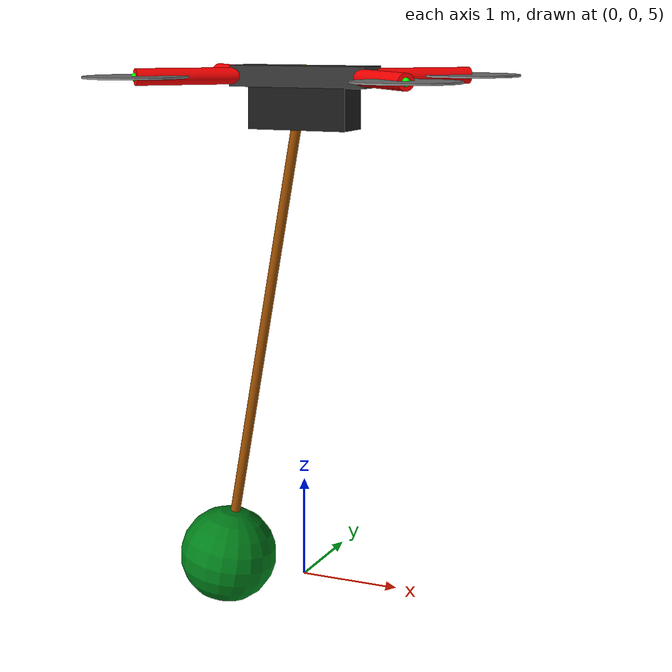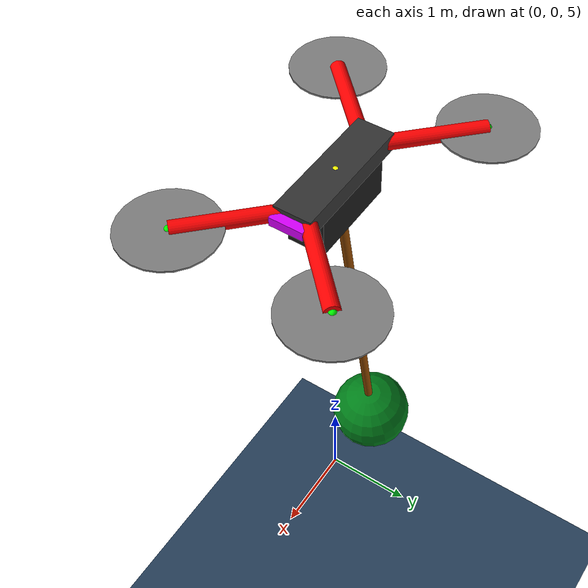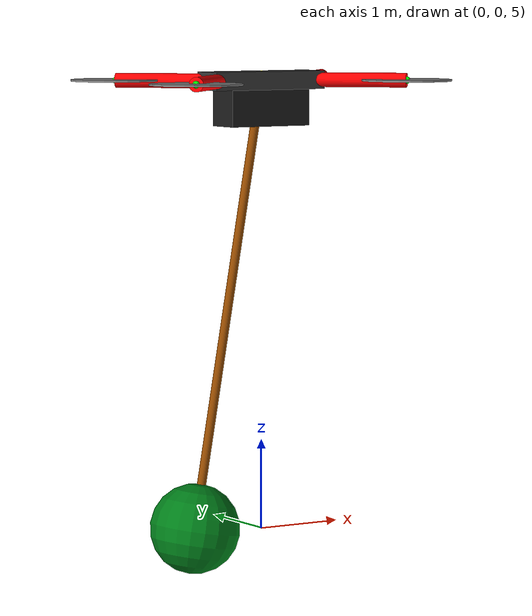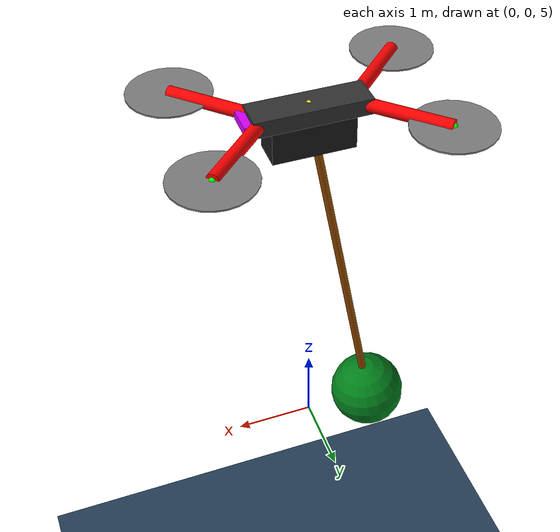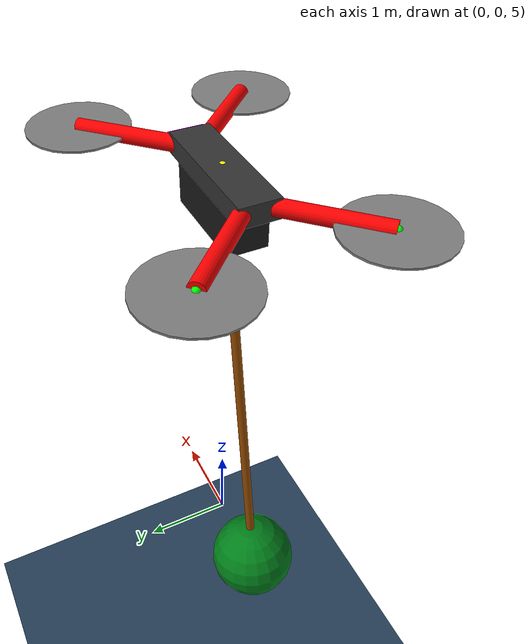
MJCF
<mujoco model="Model quadcopter_v1.4.1"> <!--v1.4.1=pridani zaveseneho zavazi, ruzne timestep-->

	<statistic center="0 0 0.1" extent="0.6" meansize="0.5"/>
	<option timestep ="0.05" density="1.205" viscosity="1.8e-5"/> <!--density[kg/m3] viscosity[kg/(ms)]-->

	<visual>
		<headlight diffuse="0.6 0.6 0.6" ambient="0.5 0.5 0.5" specular="1 1 1"/>
		<rgba haze="0.1 0.2 0.3 1"/>
		<global azimuth="110" elevation="-40" ellipsoidinertia="true"/>
		<map zfar="1000"/>
  	</visual>

	<asset>
		<!--scena-->
		<texture type="skybox" builtin="gradient" rgb1="0.3 0.5 0.7" rgb2="0 0 0" width="512" height="512"/><!--něbo-->

		<texture type="2d" name="podlaha_textura" builtin="checker" mark="edge" rgb1="0.2 0.3 0.4" rgb2="0.1 0.2 0.3" markrgb="0.8 0.8 0.8" width="255" height="255"/>
		<material name="podlaha" texture="podlaha_textura" texuniform="true" texrepeat="3 3" reflectance="0"/><!--podlaha-->

	</asset>

	<worldbody><!--SI units-->
		<!--svetlo a podlaha-->
        <light diffuse="0.7 0.7 0.7" pos="0 0 30" dir="0 0 -1" directional="false"/>
		<geom name="podlaha" type="plane" size="0 0 0.1" material="podlaha"/>

		<!--kvadrokoptera-->
		<body name="kvadrokoptera" pos="0 0 10">
			<joint type="free"/>
			<geom type="box" name="zakladna" size="0.7 0.2 0.1" mass="1" rgba="0.2 0.2 0.2 1"/>
			<geom type="box" name="podvozek" size="0.5 0.2 0.2" mass="0.5" pos="0 0 -0.3" rgba="0.1 0.1 0.1 1"/>
			<geom type="box" name="predni strana" size="0.1 0.18 0.05" mass="0" pos="0.7 0 0" rgba="0.86 0 1 1"/>
			<site name="IMU+other" type="capsule" size="0.1" rgba="1 1 0 1"/> <!--misto umisteni vsech senzoru-->
			<!--IMU=Inertial measurement unit-->
			<site name="range site" type="capsule" euler="0 180 0" rgba="1 1 0 0"/>

			<body euler="-90 45 0" pos="1 0.5 0">
				<geom type="cylinder" size="0.08 0.5" mass="0.2" rgba="1 0 0 1"/>
				<geom type="cylinder" name="rotor1" pos="0 0 0.5" euler="90 0 0" size="0.5 0.01"   mass="0.25"/>
				<site name="thrust1" pos="0 0 0.5" euler="90 0 0" size="0.04" rgba="0 1 0 1"/>
			</body>

			<body euler="-90 -45 0" pos="1 -0.5 0">
				<geom type="cylinder" size="0.08 0.5" mass="0.2"  rgba="1 0 0 1"/>
				<geom type="cylinder" name="rotor2" pos="0 0 -0.5" euler="90 0 0" size="0.5 0.01"   mass="0.25"/>
				<site name="thrust2" pos="0 0 -0.5" euler="90 0 0" size="0.04" rgba="0 1 0 1"/>
			</body>

			<body euler="-90 45 0" pos="-1 -0.5 0">
				<geom type="cylinder" size="0.08 0.5" mass="0.2"  rgba="1 0 0 1"/>
				<geom type="cylinder" name="rotor3" pos="0 0 -0.5" euler="90 0 0" size="0.5 0.01"   mass="0.25"/>
				<site name="thrust3" pos="0 0 -0.5" euler="90 0 0" size="0.04" rgba="0 1 0 1"/>
			</body>

			<body euler="-90 -45 0" pos="-1 0.5 0">
				<geom type="cylinder" size="0.08 0.5" mass="0.2"  rgba="1 0 0 1"/>
				<geom type="cylinder" name="rotor4" pos="0 0 0.5" euler="90 0 0" size="0.5 0.01"   mass="0.25"/>
				<site name="thrust4" pos="0 0 0.5" euler="90 0 0" size="0.04" rgba="0 1 0 1"/>
			</body>

<!--			zavazi, ktere je jako podrizene telo, ale neni jako predchozi body-->
			<body name="pendulum" pos="0 0 0" euler="0 10 0">
				<joint type="hinge" axis="0 1 0" name="spojeni_lano"/>

				<geom type="cylinder" name="lano" pos="0 0 -2.5" size="0.05 2.5" mass="0" rgba="0.58 0.29 0 1"/>
				<geom name="zavazi" type="sphere" size="0.5" pos="0 0 -5" mass="0.5" rgba="0 0.5 0.1 1"/>
			</body>

		</body>
	</worldbody>

	<sensor>
		<!--lze cist v kodu z mjData.sensordata-->
		<accelerometer name="akcelerometr" site="IMU+other"/> <!--3 outputs-->
		<velocimeter name="mereni rychlosti" site="IMU+other"/> <!--3 outputs-->
		<gyro name="gyroskop" site="IMU+other"/> <!--3 outputs-->
		<force name="senzor sily" site="IMU+other"/> <!--3 outputs-->
		<torque name="senzor momentu" site="IMU+other"/> <!--3 outputs-->
		<!--rangefinder meri podel Z+ site, takze musel jsem smerovat site osou Z+ dolu, aby meril vzalenost do plane-->

		<!--testove senzory na aktuatoru-->
	</sensor>

	<actuator>

		<motor name="motor1" site="thrust1" gear="0 0 1 0 0 1"/> <!--CCW-->
		<motor name="motor2" site="thrust2" gear="0 0 1 0 0 -1"/> <!--CW-->
		<motor name="motor3" site="thrust3" gear="0 0 1 0 0 1"/> <!--CCW-->
		<motor name="motor4" site="thrust4" gear="0 0 1 0 0 -1"/> <!--CW-->
	</actuator>

</mujoco>
